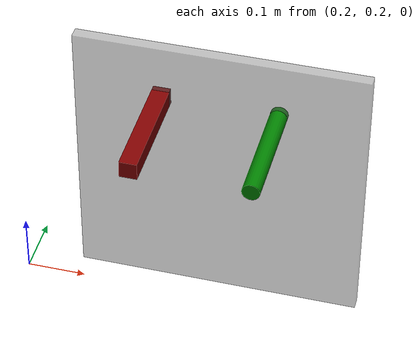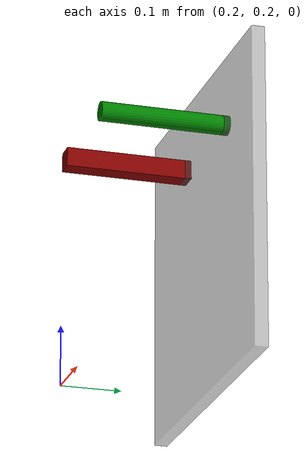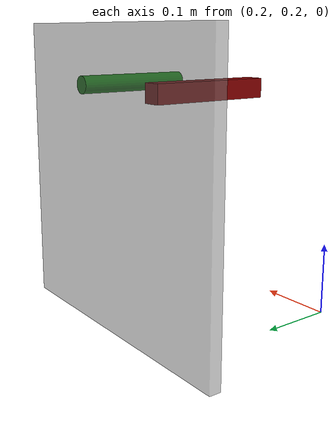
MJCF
<mujoco>
    <worldbody>
        <body name="platform" pos="0.5 0.35 0.15" quat="1 1 0 0">
            <geom pos="0 0 0" size="0.25 0.25 0.01" rgba="0.5 0.5 0.5 0.5" type="box" mass="10" friction="0.3 0.001 0.0001" priority="1"/>
            <geom pos="0.1 0.15 0.1" size="0.015 0.1" rgba="0 0.5 0 1" type="cylinder" mass="0.001"/>
            <geom pos="-0.1 0.15 0.1" size="0.015 0.015 0.1" rgba="0.5 0 0 1" type="box" mass="0.001"/>
        </body>
    </worldbody>
</mujoco>
